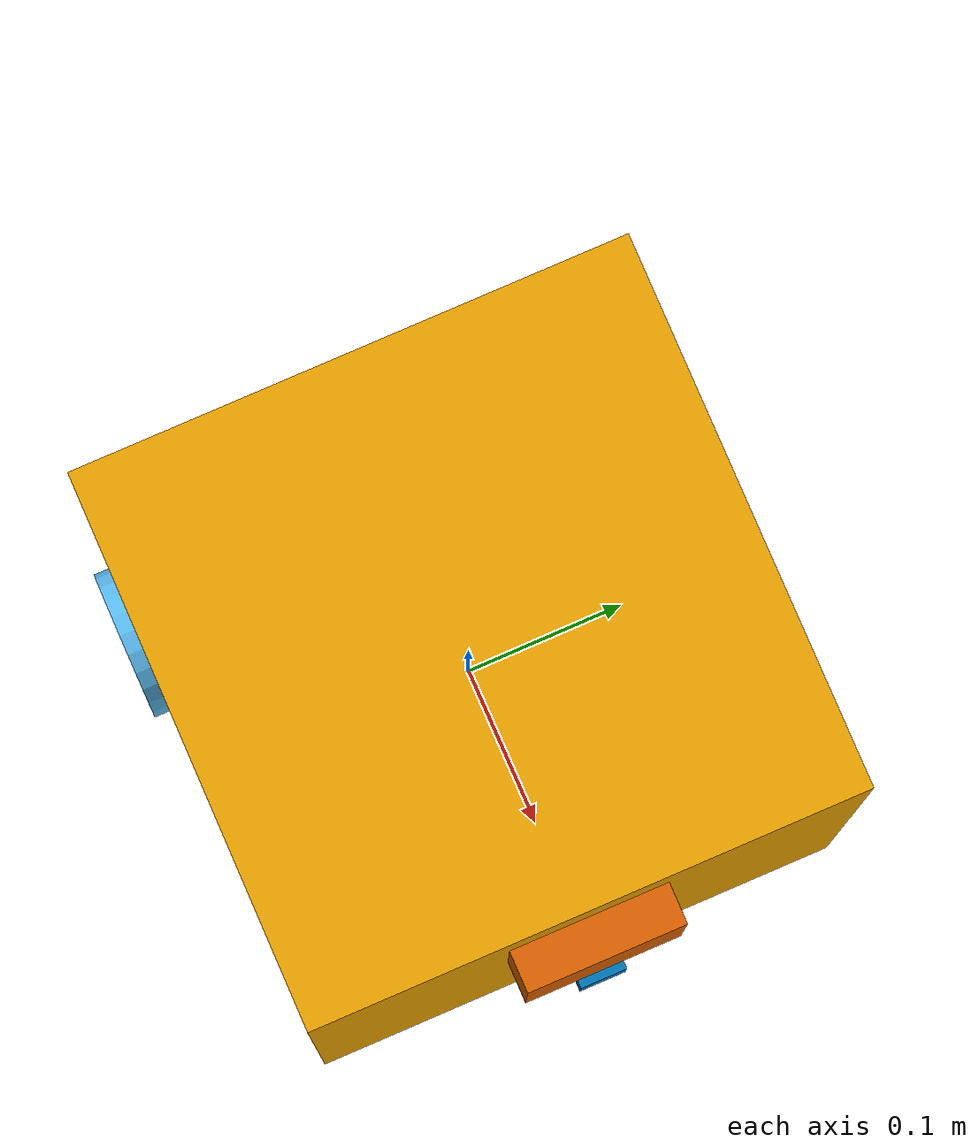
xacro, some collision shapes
<?xml version="1.0" encoding="UTF-8"?>

<robot name="prbot" xmlns:xacro="http://www.ros.org/wiki/xacro">
  <xacro:include filename="$(find prbot_description)/urdf/robot.gazebo" />

  <xacro:property name="wheel_rad" value="0.05"/>
  <xacro:property name="wheel_len" value="0.025"/>
  <xacro:property name="body_x" value="0.3472"/>
  <xacro:property name="body_y" value="0.34852"/>
  <xacro:property name="body_z" value="0.40171"/>
  <xacro:property name="cam_len" value="0.03"/>

  <!-- square base for the prbot -->
  <link name="square_base">
    <!-- configure the phisics of the link -->
    <inertial>
      <mass value="10"/>
      <inertia ixx="0.166667" ixy="0" ixz="0" iyy="0.166667" iyz="0" izz="0.166667"/>
    </inertial>
    <!-- configure the collition box for that link-->
    <collision name="base_collision">
      <geometry>
        <box size="${body_x} ${body_y} ${body_z}"/>
      </geometry>
      <gazebo>
      <surface>
        <friction>
          <ode>
            <mu>0.0</mu>
            <mu2>0.0</mu2>
          </ode>
        </friction>
      </surface>
      </gazebo>
    </collision>
    <!-- configure the visual for the link -->
    <visual name="base_visual">
      <geometry>
        <box size="${body_x} ${body_y} ${body_z}"/>
      </geometry>
    </visual>
  </link>

  <!-- ################# right wheel #############################-->
  <link name="right_wheel">
    <pose xyz="${-0.5*body_x+wheel_rad} ${-body_y/2} ${-body_z/2}" rpy="-1.5707 0 0"/>
    <!-- configure the inertia of the wheel-->
    <inertial>
      <mass value="0.15"/>
      <inertia ixx="0.145833" ixy="0" ixz="0" iyy="0.145833" iyz="0" izz="0.125"/>
    </inertial>
    <!-- configure the collision box of the link -->
    <collision name="right_wheel_collision">
      <origin rpy= "-1.5707 0 0" xyz="0 0 0"/>
      <geometry>
        <cylinder radius="${wheel_rad}" length="${wheel_len}"/>
      </geometry>
    </collision>
    <!-- configure the visual for the link -->
    <visual name="right_wheel_visual">
      <origin rpy= "-1.5707 0 0" xyz="0 0 0"/>
      <geometry>
        <cylinder radius="${wheel_rad}" length="${wheel_len}"/>
      </geometry>
    </visual>
  </link>
  <!--##################### left wheel #########################-->
  <link name="left_wheel">
    <pose xyz="${-0.5*body_x+wheel_rad} ${body_y/2} ${-body_z/2}" rpy="-1.5707 0 0"/>
    <!-- configure the inertia of the wheel-->
    <inertial>
      <mass value="0.15"/>
      <inertia ixx="0.145833" ixy="0" ixz="0" iyy="0.145833" iyz="0" izz="0.125"/>
    </inertial>
    <!-- configure the collision box of the link -->
    <collision name="left_wheel_collision">
      <origin rpy= "-1.5707 0 0" xyz="0 0 0"/>
      <geometry>
        <cylinder radius="${wheel_rad}" length="${wheel_len}"/>
      </geometry>
    </collision>
    <!-- configure the visual for the link -->
    <visual name="left_wheel_visual">
      <origin rpy= "-1.5707 0 0" xyz="0 0 0"/>
      <geometry>
        <cylinder radius="${wheel_rad}" length="${wheel_len}"/>
      </geometry>
    </visual>
  </link>

  <!--##################### caster wheel #########################-->
  <link name="caster_wheel">
    <!-- how the wheel should appear -->
    <pose xyz="${0.5*body_x-wheel_rad} 0 ${-body_z/2}" rpy="0 0 0"/>
    <!-- configure the inertia of the wheel-->
    <inertial>
      <mass value="0.1"/>
      <inertia ixx="0.1" ixy="0" ixz="0" iyy="0" iyz="0" izz="0.1"/>
    </inertial>
    <!-- configure the collision box of the link -->
    <collision name="caster_collision">
      <geometry>
        <sphere radius="${wheel_rad}"/>
      </geometry>
      <gazebo>
      <surface>
        <friction>
          <ode>
            <mu>0.0</mu>
            <mu2>0.0</mu2>
          </ode>
        </friction>
      </surface>
      </gazebo>
    </collision>
    <!-- configure the visual for the link -->
    <visual name="caster_visual">
      <geometry>
        <sphere radius="${wheel_rad}"/>
      </geometry>
    </visual>
  </link>

  <!--##################### camera link #########################-->
  <link name="camera_box">
    <!-- configure the phisics of the link -->
    <inertial>
      <mass value="0.1"/>
      <inertia ixx="1.5e-05" ixy="0" ixz="0" iyy="1.5e-05" iyz="0" izz="1.5e-05"/>
    </inertial>

  <!-- configure the collition box for the link-->
    <collision name="base_collision">
      <geometry>
        <box size="${cam_len} ${cam_len} ${cam_len}"/>
      </geometry>
    </collision>

    <!-- configure the visual for the link -->
    <visual name="visual">
      <geometry>
        <box size="${cam_len} ${cam_len} ${cam_len}"/>
      </geometry>
    </visual>
  </link>

 <!-- Hokuyo Laser -->
  <link name="hokuyo">
    <collision>
      <origin xyz="0 0 0" rpy="0 0 0"/>
      <geometry>
    <box size="0.1 0.1 0.1"/>
      </geometry>
    </collision>

    <visual>
      <origin xyz="0 0 0" rpy="0 0 0"/>
      <geometry>
        <mesh filename="package://mybot_description/meshes/hokuyo.dae"/>
      </geometry>
    </visual>

    <inertial>
      <mass value="1e-5" />
      <origin xyz="0 0 0" rpy="0 0 0"/>
      <inertia ixx="1e-6" ixy="0" ixz="0" iyy="1e-6" iyz="0" izz="1e-6" />
    </inertial>
  </link>

  <!--##################### joints #########################-->
  <!-- joints for the two wheels -->
  <joint name="base2righwheel" type="continuous">
    <origin xyz="${-body_x/2 + wheel_rad} ${-body_y/2} ${-body_z/2}" rpy= "0 0 0"/>
    <parent link="square_base"/>
    <child link="right_wheel"/>
    <axis xyz="0 1 0"/>
    <limit effort="1" velocity="0.3" />
  </joint>

  <joint name="base2leftwheel" type="continuous">
    <origin xyz="${-body_x/2 + wheel_rad} ${body_y/2} ${-body_z/2}" rpy= "0 0 0"/>
    <parent link="square_base"/>
    <child link="left_wheel"/>
    <limit effort="1" velocity="0.3" />
    <axis xyz="0 1 0"/>
  </joint>

  <!-- for a caster wheel we will add tree continuous joints -->
  <joint name="base2casterwheelx" type="fixed">
    <origin rpy= "0 0 0" xyz="${body_x/2 - wheel_rad} 0 ${-body_z/2}"/>
    <parent link="square_base"/>
    <child link="caster_wheel"/>
  </joint>

  <!-- joint to attach the camera link to the body -->
  <joint name="base2camera_box" type="fixed">
    <origin rpy= "0 0 0" xyz="${body_x/2+cam_len/2} 0 0"/>
    <parent link="square_base"/>
    <child link="camera_box"/>
  </joint>

  <joint name="hokuyo_joint" type="fixed">
    <axis xyz="0 1 0" />
    <origin xyz=".15 0 .1" rpy="0 0 0"/>
    <parent link="square_base"/>
    <child link="hokuyo"/>
  </joint>

</robot>
